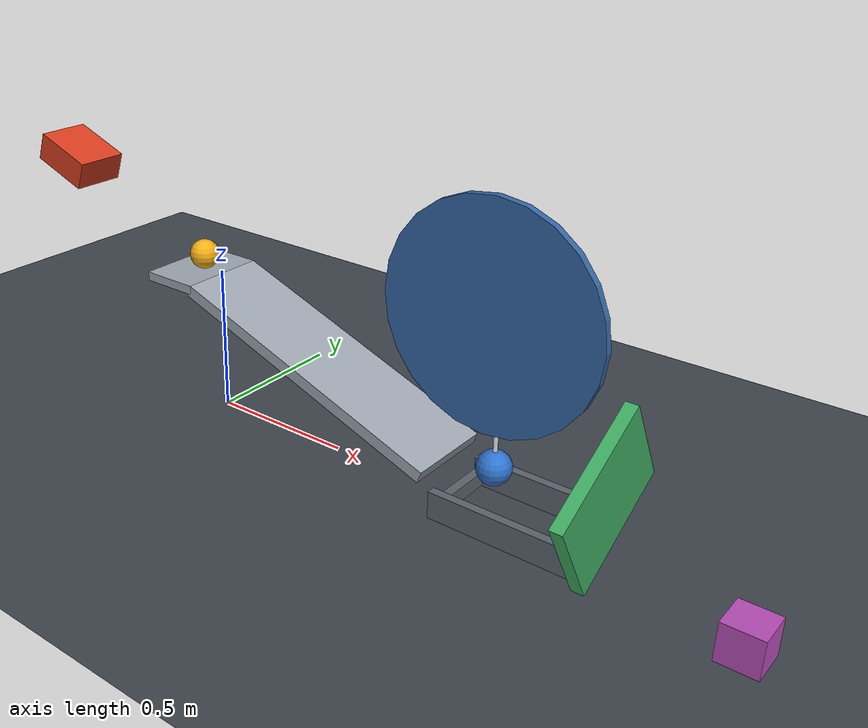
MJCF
<mujoco model="spring_cart_ramp_pendulum_door_corrected">
  <compiler angle="degree" autolimits="true"/>
  <option timestep="0.002" gravity="0 0 -9.81" integrator="implicitfast" solver="Newton" iterations="100" tolerance="1e-10"/>
  <size njmax="2000" nconmax="300"/>
  <visual>
    <global azimuth="125" elevation="-18"/>
    <headlight ambient="0.35 0.35 0.35" diffuse="0.75 0.75 0.75" specular="0.15 0.15 0.15"/>
  </visual>

  <!-- MuJoCo has no direct restitution attribute; the contact damping ratio targets approximately 0.05. -->
  <!-- Sliding friction is 0.68; torsional and rolling friction provide passive dissipation. -->

  <worldbody>
    <light name="scene_light" pos="0 -3 4" dir="0 0.5 -1"/>
    <camera name="overview" pos="3.1 -4.2 2.4" xyaxes="0.84 0.54 0 -0.20 0.31 0.93"/>

    <geom name="floor" type="plane" size="5 5 0.1" friction="0.68 0.005 0.001" condim="6" solref="0.006 0.690107" solimp="0.99 0.99 0.001" rgba="0.24 0.27 0.30 1"/>

    <!-- Gravity assists the inclined spring slide after it passes its neutral position. -->
    <!-- Initial spring compression is 0.20 m; geometric first contact with ball1 is at q=0.50 m. -->
    <body name="cart1" pos="-0.700197130 0 0.767753438" quat="0.984807753 0 0.173648178 0">
      <joint name="cart1_slide" type="slide" axis="1 0 0" damping="0.20" stiffness="18" springref="0.20" limited="true" range="0 0.54" solreflimit="0.004 1" solimplimit="0.99 0.99 0.001"/>
      <geom name="cart1_chassis" type="box" size="0.11 0.09 0.05" mass="0.50" friction="0.68 0.005 0.001" condim="6" solref="0.006 0.690107" solimp="0.99 0.99 0.001" rgba="0.85 0.24 0.12 1"/>
    </body>

    <!-- Inclined surface length 1.00 m, width 0.30 m, angle 20 degrees. -->
    <!-- Downhill surface endpoint: (0.939692621, 0, 0.15). -->
    <!-- The level shelf keeps ball1 stationary before the cart arrives. -->
    <body name="ramp1" pos="0.463005908 0 0.302216219" quat="0.984807753 0 0.173648178 0">
      <geom name="ramp1_surface" type="box" size="0.50 0.15 0.02" friction="0.68 0.005 0.001" condim="6" solref="0.006 0.690107" solimp="0.99 0.99 0.001" rgba="0.62 0.65 0.69 1"/>
      <geom name="ramp1_start_shelf" type="box" pos="-0.588838960 0 -0.028297404" quat="0.984807753 0 -0.173648178 0" size="0.10 0.15 0.015" friction="0.68 0.005 0.001" condim="6" solref="0.006 0.690107" solimp="0.99 0.99 0.001" rgba="0.62 0.65 0.69 1"/>
    </body>

    <body name="ball1" pos="-0.08 0 0.542020143">
      <freejoint name="ball1_free"/>
      <geom name="ball1_sphere" type="sphere" size="0.05" mass="0.20" friction="0.68 0.005 0.001" condim="6" solref="0.006 0.690107" solimp="0.99 0.99 0.001" rgba="0.95 0.68 0.08 1"/>
    </body>

    <!-- Rigid 0.50 m pivot-to-bob pendulum; combined mass is 0.35 kg. -->
    <!-- The concentric flywheel adds inertia without adding gravitational lifting work. -->
    <!-- The bob's upstream surface is 0.10 m beyond the ramp endpoint. -->
    <body name="pendulum1" pos="1.094692621 0 0.66">
      <joint name="pendulum1_hinge" type="hinge" axis="0 1 0" damping="0.04" limited="true" range="-60 0" solreflimit="0.004 1" solimplimit="0.99 0.99 0.001"/>
      <geom name="pendulum1_flywheel" type="cylinder" pos="0 -0.07 0" quat="0.707106781 0.707106781 0 0" size="0.35 0.012" mass="0.315" friction="0.68 0.005 0.001" condim="6" solref="0.006 0.690107" solimp="0.99 0.99 0.001" rgba="0.20 0.40 0.65 1"/>
      <geom name="pendulum1_rod" type="capsule" fromto="0 0 0 0 0 -0.50" size="0.007" mass="0.005" friction="0.68 0.005 0.001" condim="6" solref="0.006 0.690107" solimp="0.99 0.99 0.001" rgba="0.80 0.83 0.86 1"/>
      <geom name="pendulum1_bob" type="sphere" pos="0 0 -0.50" size="0.055" mass="0.030" friction="0.68 0.005 0.001" condim="6" solref="0.006 0.690107" solimp="0.99 0.99 0.001" rgba="0.18 0.45 0.80 1"/>
    </body>

    <!-- Passive enclosure catches the ball after its pendulum impact. -->
    <!-- The downstream wall is below the pendulum bob's swept envelope. -->
    <body name="ball1_catcher" pos="0 0 0">
      <geom name="ball1_catcher_upstream" type="box" pos="0.975 0 0.025" size="0.015 0.125 0.025" friction="0.68 0.005 0.001" condim="6" solref="0.006 0.690107" solimp="0.99 0.99 0.001" rgba="0.36 0.39 0.43 1"/>
      <geom name="ball1_catcher_downstream" type="box" pos="1.415 0 0.09" size="0.015 0.125 0.09" friction="0.68 0.005 0.001" condim="6" solref="0.006 0.690107" solimp="0.99 0.99 0.001" rgba="0.36 0.39 0.43 1"/>
      <geom name="ball1_catcher_left" type="box" pos="1.195 -0.125 0.045" size="0.235 0.015 0.045" friction="0.68 0.005 0.001" condim="6" solref="0.006 0.690107" solimp="0.99 0.99 0.001" rgba="0.36 0.39 0.43 1"/>
      <geom name="ball1_catcher_right" type="box" pos="1.195 0.125 0.045" size="0.235 0.015 0.045" friction="0.68 0.005 0.001" condim="6" solref="0.006 0.690107" solimp="0.99 0.99 0.001" rgba="0.36 0.39 0.43 1"/>
    </body>

    <!-- Pendulum-to-door first contact is geometrically located at -40 degrees. -->
    <!-- The hinge points upward; negative rotation now gives a clockwise top-view sweep. -->
    <!-- The inclined hinge provides a balanced, unstable starting equilibrium and gravity assistance after impact. -->
    <body name="door1" pos="1.491086426 -0.20 0.02" quat="0.965925826 0.258819045 0 0">
      <joint name="door1_hinge" type="hinge" axis="0 0 1" damping="0.04" limited="true" range="-70 0" solreflimit="0.004 1" solimplimit="0.99 0.99 0.001"/>
      <geom name="door1_panel" type="box" pos="0 0.21 0.16" size="0.02 0.21 0.16" mass="0.45" friction="0.68 0.005 0.001" condim="6" solref="0.006 0.690107" solimp="0.99 0.99 0.001" rgba="0.24 0.67 0.38 1"/>
    </body>

    <body name="block1" pos="1.926 -0.14 0.06">
      <freejoint name="block1_free"/>
      <geom name="block1_cube" type="box" size="0.06 0.06 0.06" mass="0.35" friction="0.68 0.005 0.001" condim="6" solref="0.006 0.690107" solimp="0.99 0.99 0.001" rgba="0.72 0.30 0.72 1"/>
    </body>
  </worldbody>

  <keyframe>
    <key name="start" time="0"/>
  </keyframe>
</mujoco>
